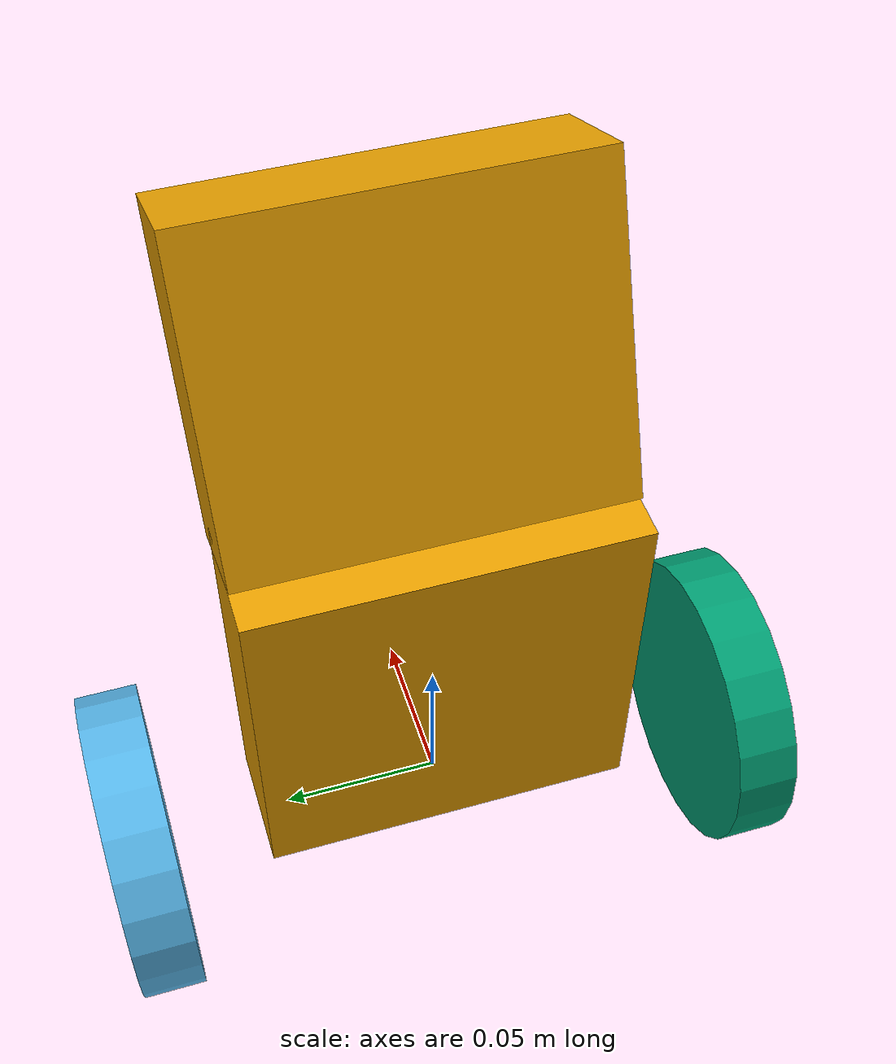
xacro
<?xml version="1.0"?>
<robot xmlns:xacro="http://www.ros.org/wiki/xacro" name="balancing_robot">

  <!-- ==== Parametros (deben coincidir con p_vals de MATLAB) ==== -->
  <!-- Ejes ROS: x adelante, z arriba => x_com(MATLAB)->x, y_com(MATLAB)->z -->
  <xacro:property name="wheel_radius" value="0.05"/>
  <xacro:property name="wheel_width"  value="0.02"/>
  <xacro:property name="wheel_sep"    value="0.20"/>
  <xacro:property name="wheel_mass"   value="0.15"/>   <!-- por rueda -->
  <xacro:property name="body_mass"    value="1.2"/>
  <xacro:property name="x_com"        value="0.020"/>  <!-- adelante -->
  <xacro:property name="z_com"        value="0.150"/>  <!-- = y_com MATLAB -->

  <!-- ==== Chasis: solido rigido con COM desplazado ==== -->
  <link name="base_link">
    <inertial>
      <!-- AQUI vive la fisica del desfase gamma -->
      <origin xyz="${x_com} 0 ${z_com}" rpy="0 0 0"/>
      <mass value="${body_mass}"/>
      <!-- Ib de MATLAB = iyy (giro de cabeceo). ixx/izz: de tu CAD -->
      <inertia ixx="0.015" ixy="0" ixz="0"
               iyy="0.015" iyz="0" izz="0.005"/>
    </inertial>
    <!-- Visual con "rodilla": dos segmentos, solo estetico -->
    <visual>
      <origin xyz="0 0 0.06" rpy="0 0 0"/>
      <geometry><box size="0.04 0.12 0.12"/></geometry>
    </visual>
    <visual>
      <origin xyz="0.03 0 0.16" rpy="0 0.4 0"/>
      <geometry><box size="0.04 0.12 0.10"/></geometry>
    </visual>
    <collision>
      <origin xyz="0.01 0 0.11" rpy="0 0 0"/>
      <geometry><box size="0.08 0.12 0.22"/></geometry>
    </collision>
  </link>

  <!-- ==== Macro de rueda ==== -->
  <xacro:macro name="wheel" params="prefix y_pos">
    <link name="${prefix}_wheel_link">
      <inertial>
        <mass value="${wheel_mass}"/>
        <inertia ixx="1e-4" ixy="0" ixz="0" iyy="2e-4" iyz="0" izz="1e-4"/>
      </inertial>
      <visual>
        <origin rpy="${pi/2} 0 0"/>
        <geometry><cylinder radius="${wheel_radius}" length="${wheel_width}"/></geometry>
      </visual>
      <collision>
        <origin rpy="${pi/2} 0 0"/>
        <geometry><cylinder radius="${wheel_radius}" length="${wheel_width}"/></geometry>
      </collision>
    </link>
    <joint name="${prefix}_wheel_joint" type="continuous">
      <parent link="base_link"/>
      <child link="${prefix}_wheel_link"/>
      <origin xyz="0 ${y_pos} 0" rpy="0 0 0"/>
      <axis xyz="0 1 0"/>
      <dynamics damping="0.001" friction="0.0"/>
    </joint>
    <gazebo reference="${prefix}_wheel_link">
      <mu1>1.5</mu1> <mu2>1.5</mu2>   <!-- friccion: evita derrape -->
    </gazebo>
  </xacro:macro>
  <xacro:wheel prefix="left"  y_pos="${ wheel_sep/2}"/>
  <xacro:wheel prefix="right" y_pos="${-wheel_sep/2}"/>

  <!-- ==== IMU ==== -->
  <link name="imu_link">
    <inertial><mass value="0.01"/>
      <inertia ixx="1e-6" ixy="0" ixz="0" iyy="1e-6" iyz="0" izz="1e-6"/>
    </inertial>
  </link>
  <joint name="imu_joint" type="fixed">
    <parent link="base_link"/> <child link="imu_link"/>
    <origin xyz="0 0 0.10"/>
  </joint>

  <gazebo reference="imu_link">
    <sensor name="imu_sensor" type="imu">
      <always_on>true</always_on>
      <update_rate>100</update_rate>
      <plugin name="imu_plugin" filename="libgazebo_ros_imu_sensor.so">
        <ros>
          <remapping>~/out:=imu</remapping>   <!-- publica en /imu -->
        </ros>
        <initial_orientation_as_reference>false</initial_orientation_as_reference>
      </plugin>
    </sensor>
  </gazebo>

  <!-- ==== ros2_control: interfaz de ESFUERZO (torque) ==== -->
  <ros2_control name="GazeboSystem" type="system">
    <hardware>
      <plugin>gazebo_ros2_control/GazeboSystem</plugin>
    </hardware>
    <joint name="left_wheel_joint">
      <command_interface name="effort">
        <param name="min">-2.0</param> <param name="max">2.0</param>
      </command_interface>
      <state_interface name="position"/>
      <state_interface name="velocity"/>
    </joint>
    <joint name="right_wheel_joint">
      <command_interface name="effort">
        <param name="min">-2.0</param> <param name="max">2.0</param>
      </command_interface>
      <state_interface name="position"/>
      <state_interface name="velocity"/>
    </joint>
  </ros2_control>

  <gazebo>
    <plugin filename="libgazebo_ros2_control.so" name="gazebo_ros2_control">
      <parameters>$(find balancing_robot)/config/controllers.yaml</parameters>
    </plugin>
  </gazebo>
</robot>
